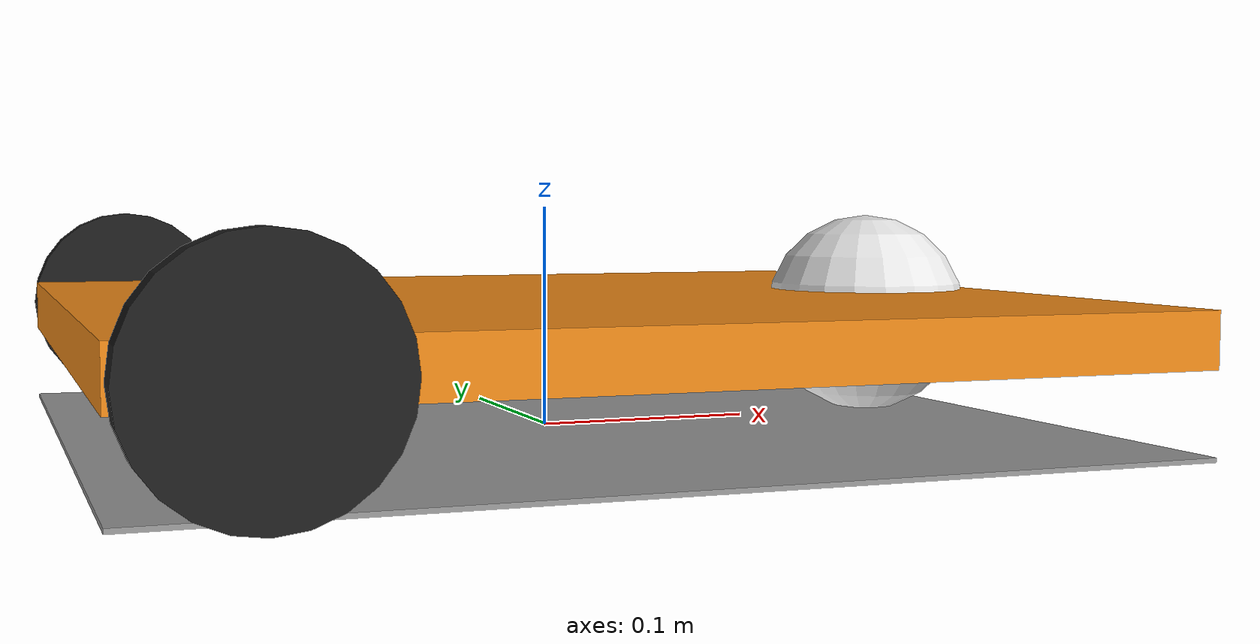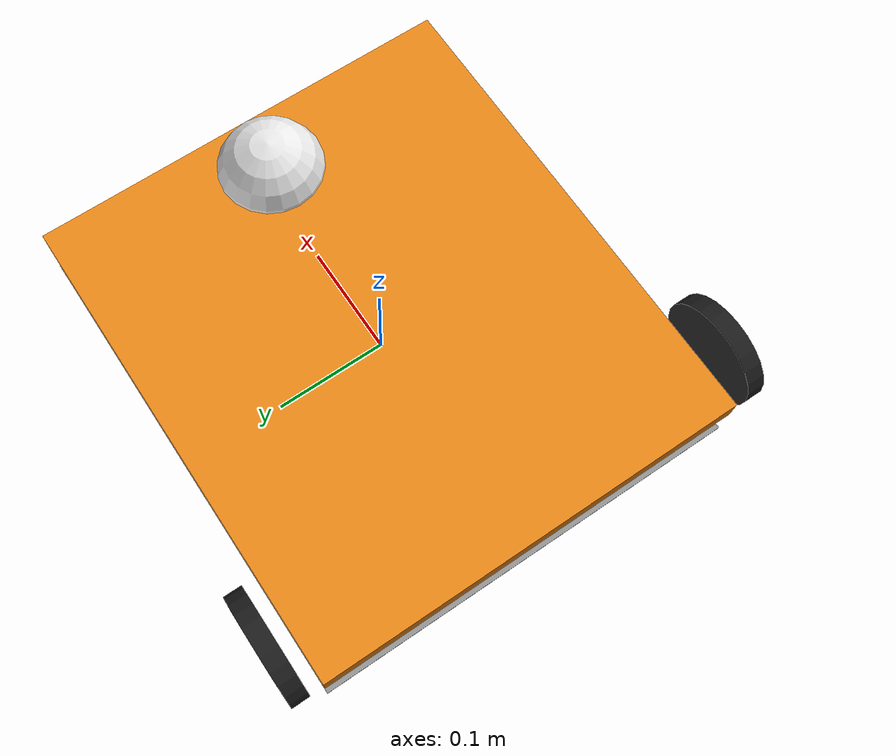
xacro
<?xml version="1.0" encoding="UTF-8"?>
<robot xmlns:xacro="http://www.ros.org/wiki/xacro">
  <xacro:property name="PI" value="3.1415926535897931"/>
  <xacro:property name="base_offset" value="0.048"/>
  <xacro:property name="base_size_x" value="0.432"/>
  <xacro:property name="base_size_y" value="0.384"/>
  <xacro:property name="base_size_z" value="0.024"/>
  <xacro:property name="wheel_length" value="0.016"/>
  <xacro:property name="wheel_radius" value="0.048"/>
  <xacro:property name="wheel_separation" value="0.424"/>
  <xacro:property name="wheel_offset_x" value="-0.168"/>
  <xacro:property name="wheel_offset_y" value="0"/>
  <xacro:property name="wheel_offset_z" value="0"/>
  <xacro:property name="caster_wheel_radius" value="0.048"/>
  <xacro:property name="caster_wheel_offset_x" value="0.168"/>
  <xacro:property name="caster_wheel_offset_y" value="0"/>
  <xacro:property name="caster_wheel_offset_z" value="0"/>
  <link name="base_footprint">
    <visual>
      <origin xyz="0 0 0" rpy="0 0 0"/>
      <geometry>
        <box size="${base_size_x} ${base_size_y} 0.002"/>
      </geometry>
      <material name="grey"/>
    </visual>
  </link>
  <joint name="base_link_joint" type="fixed">
    <parent link="base_footprint"/>
    <child link="base_link"/>
    <origin xyz="0 0 ${base_offset}" rpy="0 0 0"/>
  </joint>
  <link name="base_link">
    <visual>
      <origin xyz="0 0 0" rpy="0 0 0"/>
      <geometry>
        <box size="${base_size_x} ${base_size_y} ${base_size_z}"/>
      </geometry>
      <material name="orange"/>
    </visual>
  </link>
  <joint name="l_wheel_joint" type="continuous">
    <parent link="base_link"/>
    <child link="l_wheel"/>
    <origin xyz="${wheel_offset_x} ${wheel_offset_y+wheel_separation/2} ${wheel_offset_z}" rpy="0 0 0"/>
    <axis xyz="0 1 0"/>
  </joint>
  <link name="l_wheel">
    <visual>
      <origin xyz="0 0 0" rpy="${PI/2} 0 0"/>
      <geometry>
        <cylinder length="${wheel_length}" radius="${wheel_radius}"/>
      </geometry>
      <material name="black"/>
    </visual>
  </link>
  <joint name="r_wheel_joint" type="continuous">
    <parent link="base_link"/>
    <child link="r_wheel"/>
    <origin xyz="${wheel_offset_x} ${wheel_offset_y-wheel_separation/2} ${wheel_offset_z}" rpy="0 0 0"/>
    <axis xyz="0 1 0"/>
    <dynamics damping="0.2"/>
  </joint>
  <link name="r_wheel">
    <visual>
      <origin xyz="0 0 0" rpy="${PI/2} 0 0"/>
      <geometry>
        <cylinder length="${wheel_length}" radius="${wheel_radius}"/>
      </geometry>
      <material name="black"/>
    </visual>
  </link>
  <joint name="caster_wheel_joint" type="fixed">
    <parent link="base_link"/>
    <child link="caster_wheel"/>
    <origin xyz="${caster_wheel_offset_x} ${caster_wheel_offset_y} ${caster_wheel_offset_z}" rpy="0 0 0"/>
  </joint>
  <link name="caster_wheel">
    <visual>
      <origin xyz="0 0 0" rpy="0 0 0"/>
      <geometry>
        <sphere radius="${caster_wheel_radius}"/>
      </geometry>
      <material name="white"/>
    </visual>
  </link>
</robot>
